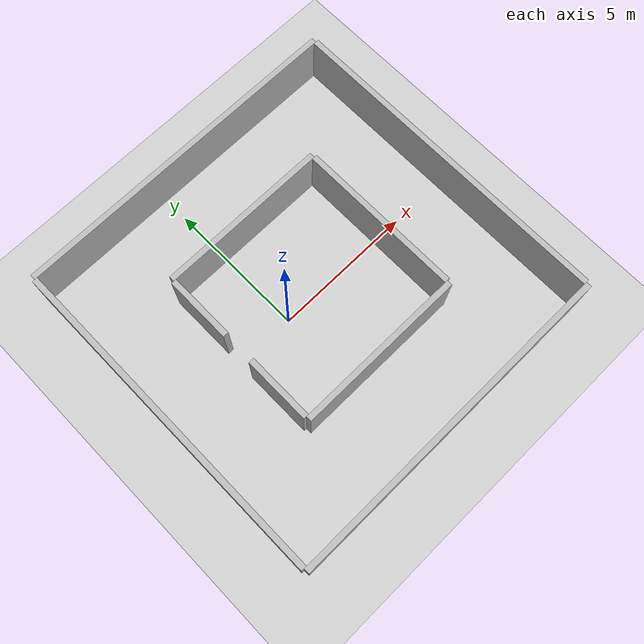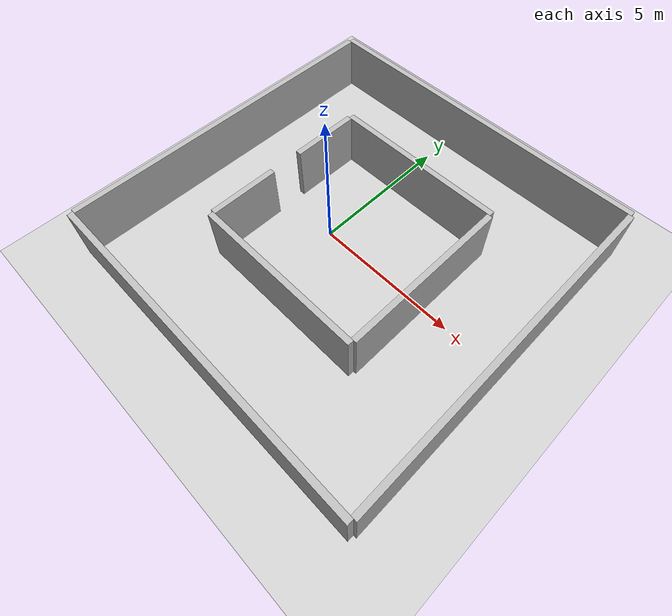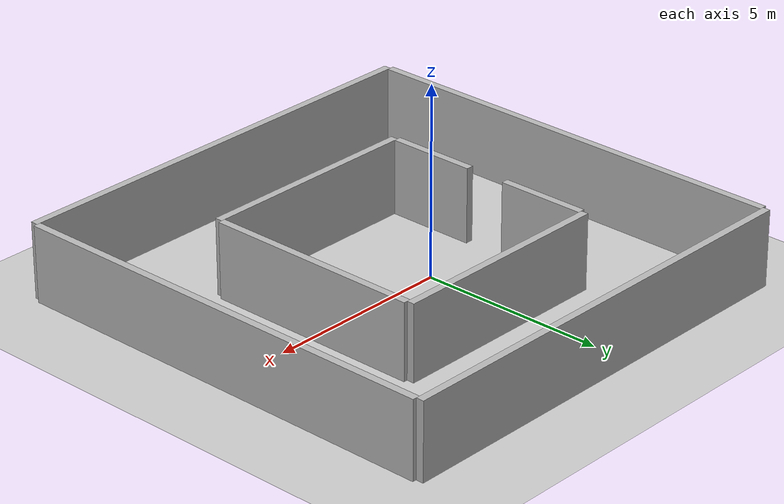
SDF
<sdf version="1.6">
 <world name="default">
  <physics name="default_physics" default="0" type="ode">
   <ode>
    <solver>
     <type>quick</type>
     <iters>20</iters>
     <sor>1</sor>
     <use_dynamic_moi_rescaling>0</use_dynamic_moi_rescaling>
    </solver>
    <constraints>
     <cfm>0</cfm>
     <erp>0.2</erp>
     <contact_max_correcting_vel>100</contact_max_correcting_vel>
     <contact_surface_layer>0</contact_surface_layer>
    </constraints>
   </ode>
   <real_time_update_rate>1000</real_time_update_rate>
   <max_step_size>0.001</max_step_size>
   <real_time_factor>1</real_time_factor>
   <max_contacts>20</max_contacts>
  </physics>
  <light name="sun" type="directional">
   <pose>0 0 10 0 -0 0</pose>
   <diffuse>0.8 0.8 0.8 1</diffuse>
   <specular>0.2 0.2 0.2 1</specular>
   <attenuation>
    <range>1000</range>
    <constant>0.9</constant>
    <linear>0.01</linear>
    <quadratic>0.001</quadratic>
   </attenuation>
   <direction>0.5 0.1 -0.9</direction>
  </light>
  <model name="ground_plane">
   <static>1</static>
   <link name="link">
    <collision name="collision">
     <geometry><plane><normal>0 0 1</normal><size>100 100</size></plane></geometry>
     <surface><friction><ode><mu>100</mu><mu2>50</mu2></ode></friction></surface>
    </collision>
    <visual name="visual">
     <cast_shadows>0</cast_shadows>
     <geometry><plane><normal>0 0 1</normal><size>100 100</size></plane></geometry>
     <material>
      <script><uri>file://media/materials/scripts/gazebo.material</uri><name>Gazebo/Grey</name></script>
     </material>
    </visual>
    <velocity_decay><linear>0</linear><angular>0</angular></velocity_decay>
   </link>
  </model>
  <scene><ambient>0.2 0.2 0.2 1</ambient><background>0.7 0.7 0.7 1</background><shadows>1</shadows></scene>
  <gravity>0 0 -9.81</gravity>
  <magnetic_field>6e-06 2.3e-05 -4.2e-05</magnetic_field>
  <atmosphere type="adiabatic"/>
  <spherical_coordinates>
   <surface_model>EARTH_WGS84</surface_model>
   <latitude_deg>0</latitude_deg>
   <longitude_deg>0</longitude_deg>
   <elevation>0</elevation>
   <heading_deg>0</heading_deg>
  </spherical_coordinates>
  <model name="wall_1_model">
   <pose>1 3 1 0 -0 0</pose>
   <static>1</static>
   <link name="wall_1_body">
    <inertial>
     <mass>1</mass>
     <inertia><ixx>1</ixx><ixy>0</ixy><ixz>0</ixz><iyy>1</iyy><iyz>0</iyz><izz>1</izz></inertia>
    </inertial>
    <collision name="collision"><geometry><box><size>6 0.2 2</size></box></geometry></collision>
    <visual name="visual"><geometry><box><size>6 0.2 2</size></box></geometry></visual>
    <velocity_decay><linear>0</linear><angular>0</angular></velocity_decay>
   </link>
  </model>
  <model name="wall_2_model">
   <pose>1 -3 1 0 -0 0</pose>
   <static>1</static>
   <link name="wall_2_body">
    <inertial>
     <mass>1</mass>
     <inertia><ixx>1</ixx><ixy>0</ixy><ixz>0</ixz><iyy>1</iyy><iyz>0</iyz><izz>1</izz></inertia>
    </inertial>
    <collision name="collision"><geometry><box><size>6 0.2 2</size></box></geometry></collision>
    <visual name="visual"><geometry><box><size>6 0.2 2</size></box></geometry></visual>
    <velocity_decay><linear>0</linear><angular>0</angular></velocity_decay>
   </link>
  </model>
  <model name="wall_3_model">
   <pose>1 6 1 0 -0 0</pose>
   <static>1</static>
   <link name="wall_3_body">
    <inertial>
     <mass>1</mass>
     <inertia><ixx>1</ixx><ixy>0</ixy><ixz>0</ixz><iyy>1</iyy><iyz>0</iyz><izz>1</izz></inertia>
    </inertial>
    <collision name="collision"><geometry><box><size>12 0.2 2</size></box></geometry></collision>
    <visual name="visual"><geometry><box><size>12 0.2 2</size></box></geometry></visual>
    <velocity_decay><linear>0</linear><angular>0</angular></velocity_decay>
   </link>
  </model>
  <model name="wall_4_model">
   <pose>1 -6 1 0 -0 0</pose>
   <static>1</static>
   <link name="wall_4_body">
    <inertial>
     <mass>1</mass>
     <inertia><ixx>1</ixx><ixy>0</ixy><ixz>0</ixz><iyy>1</iyy><iyz>0</iyz><izz>1</izz></inertia>
    </inertial>
    <collision name="collision"><geometry><box><size>12 0.2 2</size></box></geometry></collision>
    <visual name="visual"><geometry><box><size>12 0.2 2</size></box></geometry></visual>
    <velocity_decay><linear>0</linear><angular>0</angular></velocity_decay>
   </link>
  </model>
  <model name="wall_5_model">
   <pose>-5 0 1 0 -0 1.57079632679</pose>
   <static>1</static>
   <link name="wall_5_body">
    <inertial>
     <mass>1</mass>
     <inertia><ixx>1</ixx><ixy>0</ixy><ixz>0</ixz><iyy>1</iyy><iyz>0</iyz><izz>1</izz></inertia>
    </inertial>
    <collision name="collision"><geometry><box><size>11.8 0.2 2</size></box></geometry></collision>
    <visual name="visual"><geometry><box><size>11.8 0.2 2</size></box></geometry></visual>
    <velocity_decay><linear>0</linear><angular>0</angular></velocity_decay>
   </link>
  </model>
  <model name="wall_6_model">
   <pose>7 0 1 0 -0 1.57079632679</pose>
   <static>1</static>
   <link name="wall_6_body">
    <inertial>
     <mass>1</mass>
     <inertia><ixx>1</ixx><ixy>0</ixy><ixz>0</ixz><iyy>1</iyy><iyz>0</iyz><izz>1</izz></inertia>
    </inertial>
    <collision name="collision"><geometry><box><size>11.8 0.2 2</size></box></geometry></collision>
    <visual name="visual"><geometry><box><size>11.8 0.2 2</size></box></geometry></visual>
    <velocity_decay><linear>0</linear><angular>0</angular></velocity_decay>
   </link>
  </model>
  <model name="wall_7_model">
   <pose>4 0 1 0 -0 1.57079632679</pose>
   <static>1</static>
   <link name="wall_7_body">
    <inertial>
     <mass>1</mass>
     <inertia><ixx>1</ixx><ixy>0</ixy><ixz>0</ixz><iyy>1</iyy><iyz>0</iyz><izz>1</izz></inertia>
    </inertial>
    <collision name="collision"><geometry><box><size>5.8 0.2 2</size></box></geometry></collision>
    <visual name="visual"><geometry><box><size>5.8 0.2 2</size></box></geometry></visual>
    <velocity_decay><linear>0</linear><angular>0</angular></velocity_decay>
   </link>
  </model>
  <model name="wall_8_model">
   <pose>-2 1.725 1 0 -0 1.57079632679</pose>
   <static>1</static>
   <link name="wall_8_body">
    <inertial>
     <mass>1</mass>
     <inertia><ixx>1</ixx><ixy>0</ixy><ixz>0</ixz><iyy>1</iyy><iyz>0</iyz><izz>1</izz></inertia>
    </inertial>
    <collision name="collision"><geometry><box><size>2.35 0.2 2</size></box></geometry></collision>
    <visual name="visual"><geometry><box><size>2.35 0.2 2</size></box></geometry></visual>
    <velocity_decay><linear>0</linear><angular>0</angular></velocity_decay>
   </link>
  </model>
  <model name="wall_9_model">
   <pose>-2 -1.725 1 0 -0 1.57079632679</pose>
   <static>1</static>
   <link name="wall_9_body">
    <inertial>
     <mass>1</mass>
     <inertia><ixx>1</ixx><ixy>0</ixy><ixz>0</ixz><iyy>1</iyy><iyz>0</iyz><izz>1</izz></inertia>
    </inertial>
    <collision name="collision"><geometry><box><size>2.35 0.2 2</size></box></geometry></collision>
    <visual name="visual"><geometry><box><size>2.35 0.2 2</size></box></geometry></visual>
    <velocity_decay><linear>0</linear><angular>0</angular></velocity_decay>
   </link>
  </model>
 </world>
</sdf>
